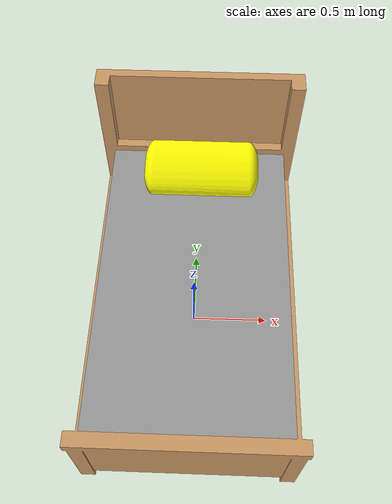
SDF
<?xml version='1.0'?>
<sdf version='1.6'>
  <model name='rai_individual_bed'>
    <link name='link_0'>
      <pose frame=''>0 1.1e-05 0.014304 1.57 -0 0</pose>
      <inertial>
        <mass>2.77175</mass>
        <inertia>
          <ixx>1.30512</ixx>
          <ixy>0</ixy>
          <ixz>0</ixz>
          <iyy>1.45572</iyy>
          <iyz>0</iyz>
          <izz>0.612565</izz>
        </inertia>
        <pose frame=''>0 0 0 0 -0 0</pose>
      </inertial>
      <self_collide>0</self_collide>
      <kinematic>0</kinematic>
      <gravity>0</gravity>
      <visual name='visual'>
        <pose frame=''>0 0 0 0 -0 0</pose>
        <geometry>
          <mesh>
 	   <uri>model://rai_individual_bed/meshes/rai_individual_bed_frame.STL</uri>
            <scale>1 1 1</scale>
          </mesh>
        </geometry>
        <material>
          <lighting>1</lighting>
          <script>
            <uri>file://media/materials/scripts/gazebo.material</uri>
            <name>Gazebo/Grey</name>
          </script>
          <ambient>0.8 0.6 0.4 1</ambient>
          <diffuse>0.8 0.6 0.4 1</diffuse>
          <specular>0.01 0.01 0.01 1</specular>
          <emissive>0 0 0 1</emissive>
          <shader type='vertex'>
            <normal_map>__default__</normal_map>
          </shader>
        </material>
        <cast_shadows>1</cast_shadows>
        <transparency>0</transparency>
      </visual>
      <collision name='collision'>
        <laser_retro>0</laser_retro>
        <max_contacts>10</max_contacts>
        <pose frame=''>0 0.34 0 0 -0 0</pose>
        <geometry>
          <box>
            <size>1.28532 0.67 2.18647</size>
          </box>
        </geometry>
        <surface>
          <friction>
            <ode>
              <mu>1</mu>
              <mu2>1</mu2>
              <fdir1>0 0 0</fdir1>
              <slip1>0</slip1>
              <slip2>0</slip2>
            </ode>
            <torsional>
              <coefficient>1</coefficient>
              <patch_radius>0</patch_radius>
              <surface_radius>0</surface_radius>
              <use_patch_radius>1</use_patch_radius>
              <ode>
                <slip>0</slip>
              </ode>
            </torsional>
          </friction>
          <bounce>
            <restitution_coefficient>0</restitution_coefficient>
            <threshold>1e+06</threshold>
          </bounce>
          <contact>
            <collide_without_contact>0</collide_without_contact>
            <collide_without_contact_bitmask>1</collide_without_contact_bitmask>
            <collide_bitmask>1</collide_bitmask>
            <ode>
              <soft_cfm>0</soft_cfm>
              <soft_erp>0.2</soft_erp>
              <kp>1e+13</kp>
              <kd>1</kd>
              <max_vel>0.01</max_vel>
              <min_depth>0</min_depth>
            </ode>
            <bullet>
              <split_impulse>1</split_impulse>
              <split_impulse_penetration_threshold>-0.01</split_impulse_penetration_threshold>
              <soft_cfm>0</soft_cfm>
              <soft_erp>0.2</soft_erp>
              <kp>1e+13</kp>
              <kd>1</kd>
            </bullet>
          </contact>
        </surface>
      </collision>
    </link>
    <link name='link_1'>
      <pose frame=''>0 0 0 1.57 -0 0</pose>
      <inertial>
        <mass>1</mass>
        <inertia>
          <ixx>0.166667</ixx>
          <ixy>0</ixy>
          <ixz>0</ixz>
          <iyy>0.166667</iyy>
          <iyz>0</iyz>
          <izz>0.166667</izz>
        </inertia>
        <pose frame=''>0 0 0 0 -0 0</pose>
      </inertial>
      <self_collide>0</self_collide>
      <kinematic>0</kinematic>
      <gravity>0</gravity>
      <visual name='visual'>
        <pose frame=''>0 0 0 0 -0 0</pose>
        <geometry>
          <mesh>
	    <uri>model://rai_individual_bed/meshes/rai_individual_mattres.STL</uri>
            <scale>1 1 1</scale>
          </mesh>
        </geometry>
        <material>
          <lighting>1</lighting>
          <script>
            <uri>file://media/materials/scripts/gazebo.material</uri>
            <name>Gazebo/Grey</name>
          </script>
          <ambient>0.95 0.95 0.95 1</ambient>
          <diffuse>0.95 0.95 0.95 1</diffuse>
          <specular>0.01 0.01 0.01 1</specular>
          <emissive>0 0 0 1</emissive>
          <shader type='vertex'>
            <normal_map>__default__</normal_map>
          </shader>
        </material>
        <cast_shadows>1</cast_shadows>
        <transparency>0</transparency>
      </visual>
    </link>
    <link name='link_2'>
      <pose frame=''>0 0 0 1.57 -0 0</pose>
      <inertial>
        <mass>1</mass>
        <inertia>
          <ixx>0.166667</ixx>
          <ixy>0</ixy>
          <ixz>0</ixz>
          <iyy>0.166667</iyy>
          <iyz>0</iyz>
          <izz>0.166667</izz>
        </inertia>
        <pose frame=''>0 0 0 0 -0 0</pose>
      </inertial>
      <self_collide>0</self_collide>
      <kinematic>0</kinematic>
      <gravity>0</gravity>
      <visual name='visual'>
        <pose frame=''>0 0 0 0 -0 0</pose>
        <geometry>
          <mesh>

 	   <uri>model://rai_individual_bed/meshes/rai_individual_pillow.STL</uri>

          </mesh>
        </geometry>
        <material>
          <lighting>1</lighting>
          <script>
            <uri>file://media/materials/scripts/gazebo.material</uri>
            <name>Gazebo/Grey</name>
          </script>
          <ambient>1 1 0 1</ambient>
          <diffuse>0.7 0.7 0.7 1</diffuse>
          <specular>0.01 0.01 0.01 1</specular>
          <emissive>0 0 0 1</emissive>
          <shader type='vertex'>
            <normal_map>__default__</normal_map>
          </shader>
        </material>
        <cast_shadows>1</cast_shadows>
        <transparency>0</transparency>
      </visual>
    </link>
    <static>1</static>
    <allow_auto_disable>1</allow_auto_disable>
  </model>
</sdf>
